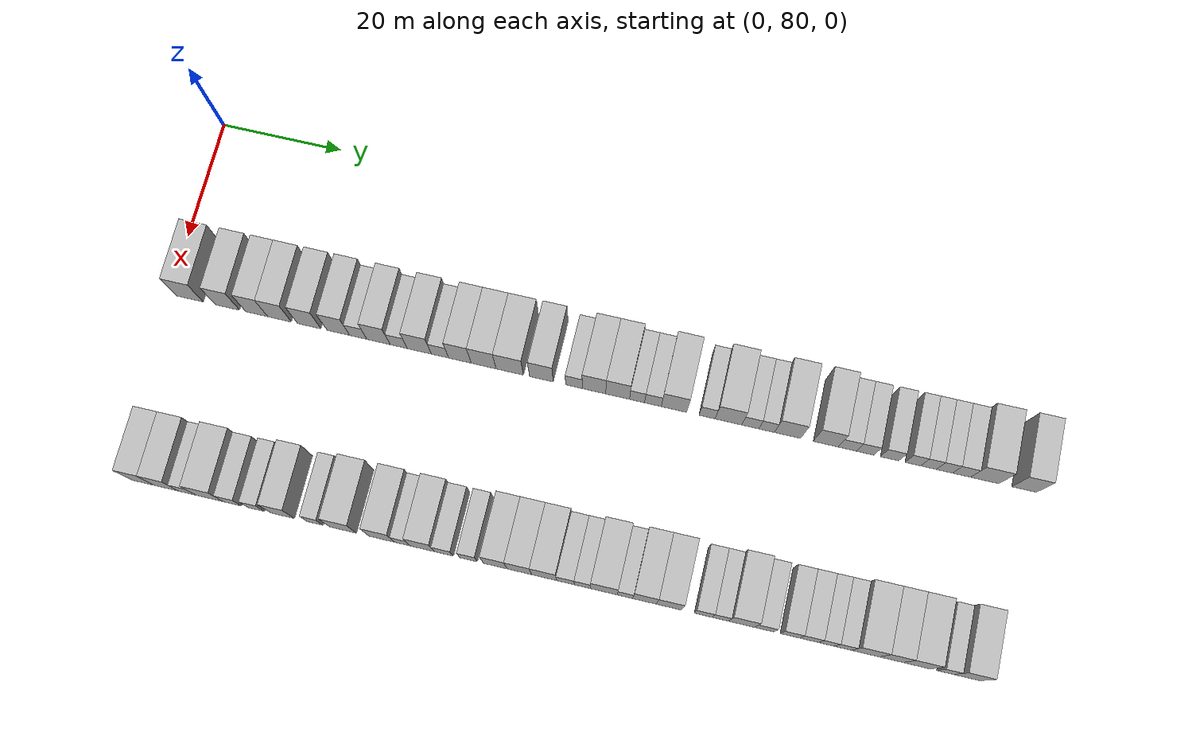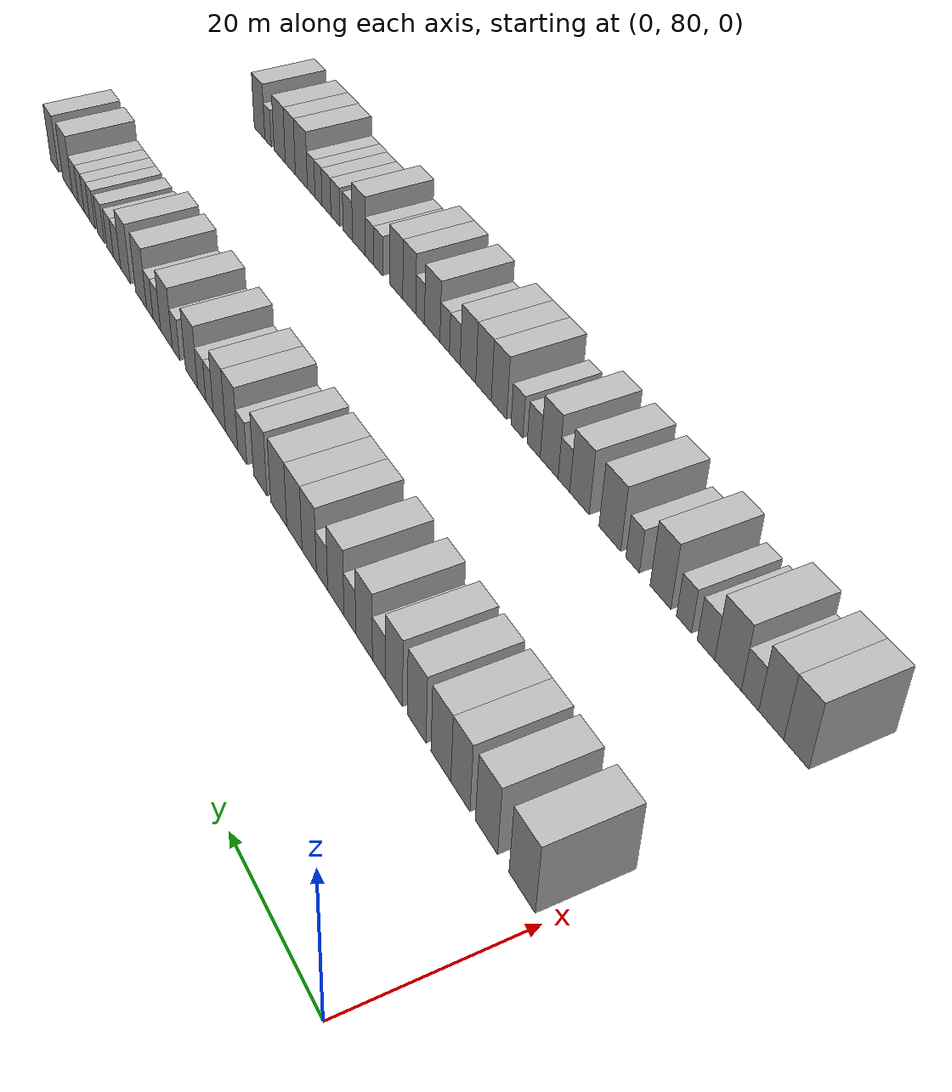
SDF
<sdf version="1.6">
 <world name="default">
  <model name="building_114">
   <static>1</static>
   <pose>25.0000 83.4187 0 0.000000 0.000000 0.000000</pose>
   <link name="link">
    <pose>0 0 4.50 0 0 0</pose>
    <collision name="collision"><geometry><box><size>10.0000 4.4901 9.0000</size></box></geometry></collision>
    <visual name="visual">
     <cast_shadows>0</cast_shadows>
     <geometry><box><size>10.0000 4.4901 9.0000</size></box></geometry>
     <material>
      <script>
       <uri>model://HANNAS_wall/materials/scripts</uri>
       <uri>model://HANNAS_wall/materials/textures</uri>
       <name>vrc/HANNAS_wall</name>
      </script>
     </material>
    </visual>
   </link>
  </model>
  <model name="building_115">
   <static>1</static>
   <pose>25.0000 89.6822 0 0.000000 0.000000 0.000000</pose>
   <link name="link">
    <pose>0 0 4.50 0 0 0</pose>
    <collision name="collision"><geometry><box><size>10.0000 4.0368 9.0000</size></box></geometry></collision>
    <visual name="visual">
     <cast_shadows>0</cast_shadows>
     <geometry><box><size>10.0000 4.0368 9.0000</size></box></geometry>
     <material>
      <script>
       <uri>model://HANNAS_wall/materials/scripts</uri>
       <uri>model://HANNAS_wall/materials/textures</uri>
       <name>vrc/HANNAS_wall</name>
      </script>
     </material>
    </visual>
   </link>
  </model>
  <model name="building_116">
   <static>1</static>
   <pose>25.0000 94.5310 0 0.000000 0.000000 0.000000</pose>
   <link name="link">
    <pose>0 0 4.50 0 0 0</pose>
    <collision name="collision"><geometry><box><size>10.0000 3.6609 9.0000</size></box></geometry></collision>
    <visual name="visual">
     <cast_shadows>0</cast_shadows>
     <geometry><box><size>10.0000 3.6609 9.0000</size></box></geometry>
     <material>
      <script>
       <uri>model://HANNAS_wall/materials/scripts</uri>
       <uri>model://HANNAS_wall/materials/textures</uri>
       <name>vrc/HANNAS_wall</name>
      </script>
     </material>
    </visual>
   </link>
  </model>
  <model name="building_117">
   <static>1</static>
   <pose>25.0000 98.3178 0 0.000000 0.000000 0.000000</pose>
   <link name="link">
    <pose>0 0 4.50 0 0 0</pose>
    <collision name="collision"><geometry><box><size>10.0000 3.9126 9.0000</size></box></geometry></collision>
    <visual name="visual">
     <cast_shadows>0</cast_shadows>
     <geometry><box><size>10.0000 3.9126 9.0000</size></box></geometry>
     <material>
      <script>
       <uri>model://HANNAS_wall/materials/scripts</uri>
       <uri>model://HANNAS_wall/materials/textures</uri>
       <name>vrc/HANNAS_wall</name>
      </script>
     </material>
    </visual>
   </link>
  </model>
  <model name="building_118">
   <static>1</static>
   <pose>25.0000 103.2134 0 0.000000 0.000000 0.000000</pose>
   <link name="link">
    <pose>0 0 4.50 0 0 0</pose>
    <collision name="collision"><geometry><box><size>10.0000 3.8786 9.0000</size></box></geometry></collision>
    <visual name="visual">
     <cast_shadows>0</cast_shadows>
     <geometry><box><size>10.0000 3.8786 9.0000</size></box></geometry>
     <material>
      <script>
       <uri>model://HANNAS_wall/materials/scripts</uri>
       <uri>model://HANNAS_wall/materials/textures</uri>
       <name>vrc/HANNAS_wall</name>
      </script>
     </material>
    </visual>
   </link>
  </model>
  <model name="building_119">
   <static>1</static>
   <pose>25.0000 108.0214 0 0.000000 0.000000 0.000000</pose>
   <link name="link">
    <pose>0 0 4.50 0 0 0</pose>
    <collision name="collision"><geometry><box><size>10.0000 3.7374 9.0000</size></box></geometry></collision>
    <visual name="visual">
     <cast_shadows>0</cast_shadows>
     <geometry><box><size>10.0000 3.7374 9.0000</size></box></geometry>
     <material>
      <script>
       <uri>model://HANNAS_wall/materials/scripts</uri>
       <uri>model://HANNAS_wall/materials/textures</uri>
       <name>vrc/HANNAS_wall</name>
      </script>
     </material>
    </visual>
   </link>
  </model>
  <model name="building_120">
   <static>1</static>
   <pose>25.0000 111.3132 0 0.000000 0.000000 0.000000</pose>
   <link name="link">
    <pose>0 0 3.00 0 0 0</pose>
    <collision name="collision"><geometry><box><size>10.0000 2.8462 6.0000</size></box></geometry></collision>
    <visual name="visual">
     <cast_shadows>0</cast_shadows>
     <geometry><box><size>10.0000 2.8462 6.0000</size></box></geometry>
     <material>
      <script>
       <uri>model://HANNAS_wall/materials/scripts</uri>
       <uri>model://HANNAS_wall/materials/textures</uri>
       <name>vrc/HANNAS_wall</name>
      </script>
     </material>
    </visual>
   </link>
  </model>
  <model name="building_121">
   <static>1</static>
   <pose>25.0000 114.6372 0 0.000000 0.000000 0.000000</pose>
   <link name="link">
    <pose>0 0 4.50 0 0 0</pose>
    <collision name="collision"><geometry><box><size>10.0000 3.8017 9.0000</size></box></geometry></collision>
    <visual name="visual">
     <cast_shadows>0</cast_shadows>
     <geometry><box><size>10.0000 3.8017 9.0000</size></box></geometry>
     <material>
      <script>
       <uri>model://HANNAS_wall/materials/scripts</uri>
       <uri>model://HANNAS_wall/materials/textures</uri>
       <name>vrc/HANNAS_wall</name>
      </script>
     </material>
    </visual>
   </link>
  </model>
  <model name="building_122">
   <static>1</static>
   <pose>25.0000 117.9324 0 0.000000 0.000000 0.000000</pose>
   <link name="link">
    <pose>0 0 3.00 0 0 0</pose>
    <collision name="collision"><geometry><box><size>10.0000 2.7888 6.0000</size></box></geometry></collision>
    <visual name="visual">
     <cast_shadows>0</cast_shadows>
     <geometry><box><size>10.0000 2.7888 6.0000</size></box></geometry>
     <material>
      <script>
       <uri>model://HANNAS_wall/materials/scripts</uri>
       <uri>model://HANNAS_wall/materials/textures</uri>
       <name>vrc/HANNAS_wall</name>
      </script>
     </material>
    </visual>
   </link>
  </model>
  <model name="building_123">
   <static>1</static>
   <pose>25.0000 121.3043 0 0.000000 0.000000 0.000000</pose>
   <link name="link">
    <pose>0 0 4.50 0 0 0</pose>
    <collision name="collision"><geometry><box><size>10.0000 3.9549 9.0000</size></box></geometry></collision>
    <visual name="visual">
     <cast_shadows>0</cast_shadows>
     <geometry><box><size>10.0000 3.9549 9.0000</size></box></geometry>
     <material>
      <script>
       <uri>model://HANNAS_wall/materials/scripts</uri>
       <uri>model://HANNAS_wall/materials/textures</uri>
       <name>vrc/HANNAS_wall</name>
      </script>
     </material>
    </visual>
   </link>
  </model>
  <model name="building_124">
   <static>1</static>
   <pose>25.0000 124.6850 0 0.000000 0.000000 0.000000</pose>
   <link name="link">
    <pose>0 0 3.00 0 0 0</pose>
    <collision name="collision"><geometry><box><size>10.0000 2.8064 6.0000</size></box></geometry></collision>
    <visual name="visual">
     <cast_shadows>0</cast_shadows>
     <geometry><box><size>10.0000 2.8064 6.0000</size></box></geometry>
     <material>
      <script>
       <uri>model://HANNAS_wall/materials/scripts</uri>
       <uri>model://HANNAS_wall/materials/textures</uri>
       <name>vrc/HANNAS_wall</name>
      </script>
     </material>
    </visual>
   </link>
  </model>
  <model name="building_125">
   <static>1</static>
   <pose>25.0000 127.9263 0 0.000000 0.000000 0.000000</pose>
   <link name="link">
    <pose>0 0 4.50 0 0 0</pose>
    <collision name="collision"><geometry><box><size>10.0000 3.6763 9.0000</size></box></geometry></collision>
    <visual name="visual">
     <cast_shadows>0</cast_shadows>
     <geometry><box><size>10.0000 3.6763 9.0000</size></box></geometry>
     <material>
      <script>
       <uri>model://HANNAS_wall/materials/scripts</uri>
       <uri>model://HANNAS_wall/materials/textures</uri>
       <name>vrc/HANNAS_wall</name>
      </script>
     </material>
    </visual>
   </link>
  </model>
  <model name="building_126">
   <static>1</static>
   <pose>25.0000 131.7962 0 0.000000 0.000000 0.000000</pose>
   <link name="link">
    <pose>0 0 4.50 0 0 0</pose>
    <collision name="collision"><geometry><box><size>10.0000 4.0636 9.0000</size></box></geometry></collision>
    <visual name="visual">
     <cast_shadows>0</cast_shadows>
     <geometry><box><size>10.0000 4.0636 9.0000</size></box></geometry>
     <material>
      <script>
       <uri>model://HANNAS_wall/materials/scripts</uri>
       <uri>model://HANNAS_wall/materials/textures</uri>
       <name>vrc/HANNAS_wall</name>
      </script>
     </material>
    </visual>
   </link>
  </model>
  <model name="building_127">
   <static>1</static>
   <pose>25.0000 136.0463 0 0.000000 0.000000 0.000000</pose>
   <link name="link">
    <pose>0 0 4.50 0 0 0</pose>
    <collision name="collision"><geometry><box><size>10.0000 4.4367 9.0000</size></box></geometry></collision>
    <visual name="visual">
     <cast_shadows>0</cast_shadows>
     <geometry><box><size>10.0000 4.4367 9.0000</size></box></geometry>
     <material>
      <script>
       <uri>model://HANNAS_wall/materials/scripts</uri>
       <uri>model://HANNAS_wall/materials/textures</uri>
       <name>vrc/HANNAS_wall</name>
      </script>
     </material>
    </visual>
   </link>
  </model>
  <model name="building_128">
   <static>1</static>
   <pose>25.0000 141.1790 0 0.000000 0.000000 0.000000</pose>
   <link name="link">
    <pose>0 0 4.50 0 0 0</pose>
    <collision name="collision"><geometry><box><size>10.0000 3.8285 9.0000</size></box></geometry></collision>
    <visual name="visual">
     <cast_shadows>0</cast_shadows>
     <geometry><box><size>10.0000 3.8285 9.0000</size></box></geometry>
     <material>
      <script>
       <uri>model://HANNAS_wall/materials/scripts</uri>
       <uri>model://HANNAS_wall/materials/textures</uri>
       <name>vrc/HANNAS_wall</name>
      </script>
     </material>
    </visual>
   </link>
  </model>
  <model name="building_129">
   <static>1</static>
   <pose>25.0000 146.4346 0 0.000000 0.000000 0.000000</pose>
   <link name="link">
    <pose>0 0 3.00 0 0 0</pose>
    <collision name="collision"><geometry><box><size>10.0000 2.6828 6.0000</size></box></geometry></collision>
    <visual name="visual">
     <cast_shadows>0</cast_shadows>
     <geometry><box><size>10.0000 2.6828 6.0000</size></box></geometry>
     <material>
      <script>
       <uri>model://HANNAS_wall/materials/scripts</uri>
       <uri>model://HANNAS_wall/materials/textures</uri>
       <name>vrc/HANNAS_wall</name>
      </script>
     </material>
    </visual>
   </link>
  </model>
  <model name="building_130">
   <static>1</static>
   <pose>25.0000 149.6611 0 0.000000 0.000000 0.000000</pose>
   <link name="link">
    <pose>0 0 4.50 0 0 0</pose>
    <collision name="collision"><geometry><box><size>10.0000 3.7701 9.0000</size></box></geometry></collision>
    <visual name="visual">
     <cast_shadows>0</cast_shadows>
     <geometry><box><size>10.0000 3.7701 9.0000</size></box></geometry>
     <material>
      <script>
       <uri>model://HANNAS_wall/materials/scripts</uri>
       <uri>model://HANNAS_wall/materials/textures</uri>
       <name>vrc/HANNAS_wall</name>
      </script>
     </material>
    </visual>
   </link>
  </model>
  <model name="building_131">
   <static>1</static>
   <pose>25.0000 153.4596 0 0.000000 0.000000 0.000000</pose>
   <link name="link">
    <pose>0 0 4.50 0 0 0</pose>
    <collision name="collision"><geometry><box><size>10.0000 3.8269 9.0000</size></box></geometry></collision>
    <visual name="visual">
     <cast_shadows>0</cast_shadows>
     <geometry><box><size>10.0000 3.8269 9.0000</size></box></geometry>
     <material>
      <script>
       <uri>model://HANNAS_wall/materials/scripts</uri>
       <uri>model://HANNAS_wall/materials/textures</uri>
       <name>vrc/HANNAS_wall</name>
      </script>
     </material>
    </visual>
   </link>
  </model>
  <model name="building_132">
   <static>1</static>
   <pose>25.0000 156.5823 0 0.000000 0.000000 0.000000</pose>
   <link name="link">
    <pose>0 0 3.00 0 0 0</pose>
    <collision name="collision"><geometry><box><size>10.0000 2.4185 6.0000</size></box></geometry></collision>
    <visual name="visual">
     <cast_shadows>0</cast_shadows>
     <geometry><box><size>10.0000 2.4185 6.0000</size></box></geometry>
     <material>
      <script>
       <uri>model://HANNAS_wall/materials/scripts</uri>
       <uri>model://HANNAS_wall/materials/textures</uri>
       <name>vrc/HANNAS_wall</name>
      </script>
     </material>
    </visual>
   </link>
  </model>
  <model name="building_133">
   <static>1</static>
   <pose>25.0000 159.1326 0 0.000000 0.000000 0.000000</pose>
   <link name="link">
    <pose>0 0 3.00 0 0 0</pose>
    <collision name="collision"><geometry><box><size>10.0000 2.6821 6.0000</size></box></geometry></collision>
    <visual name="visual">
     <cast_shadows>0</cast_shadows>
     <geometry><box><size>10.0000 2.6821 6.0000</size></box></geometry>
     <material>
      <script>
       <uri>model://HANNAS_wall/materials/scripts</uri>
       <uri>model://HANNAS_wall/materials/textures</uri>
       <name>vrc/HANNAS_wall</name>
      </script>
     </material>
    </visual>
   </link>
  </model>
  <model name="building_134">
   <static>1</static>
   <pose>25.0000 162.5015 0 0.000000 0.000000 0.000000</pose>
   <link name="link">
    <pose>0 0 4.50 0 0 0</pose>
    <collision name="collision"><geometry><box><size>10.0000 4.0558 9.0000</size></box></geometry></collision>
    <visual name="visual">
     <cast_shadows>0</cast_shadows>
     <geometry><box><size>10.0000 4.0558 9.0000</size></box></geometry>
     <material>
      <script>
       <uri>model://HANNAS_wall/materials/scripts</uri>
       <uri>model://HANNAS_wall/materials/textures</uri>
       <name>vrc/HANNAS_wall</name>
      </script>
     </material>
    </visual>
   </link>
  </model>
  <model name="building_135">
   <static>1</static>
   <pose>25.0000 167.8032 0 0.000000 0.000000 0.000000</pose>
   <link name="link">
    <pose>0 0 3.00 0 0 0</pose>
    <collision name="collision"><geometry><box><size>10.0000 2.5476 6.0000</size></box></geometry></collision>
    <visual name="visual">
     <cast_shadows>0</cast_shadows>
     <geometry><box><size>10.0000 2.5476 6.0000</size></box></geometry>
     <material>
      <script>
       <uri>model://HANNAS_wall/materials/scripts</uri>
       <uri>model://HANNAS_wall/materials/textures</uri>
       <name>vrc/HANNAS_wall</name>
      </script>
     </material>
    </visual>
   </link>
  </model>
  <model name="building_136">
   <static>1</static>
   <pose>25.0000 171.2039 0 0.000000 0.000000 0.000000</pose>
   <link name="link">
    <pose>0 0 4.50 0 0 0</pose>
    <collision name="collision"><geometry><box><size>10.0000 4.2538 9.0000</size></box></geometry></collision>
    <visual name="visual">
     <cast_shadows>0</cast_shadows>
     <geometry><box><size>10.0000 4.2538 9.0000</size></box></geometry>
     <material>
      <script>
       <uri>model://HANNAS_wall/materials/scripts</uri>
       <uri>model://HANNAS_wall/materials/textures</uri>
       <name>vrc/HANNAS_wall</name>
      </script>
     </material>
    </visual>
   </link>
  </model>
  <model name="building_137">
   <static>1</static>
   <pose>25.0000 174.6920 0 0.000000 0.000000 0.000000</pose>
   <link name="link">
    <pose>0 0 3.00 0 0 0</pose>
    <collision name="collision"><geometry><box><size>10.0000 2.7223 6.0000</size></box></geometry></collision>
    <visual name="visual">
     <cast_shadows>0</cast_shadows>
     <geometry><box><size>10.0000 2.7223 6.0000</size></box></geometry>
     <material>
      <script>
       <uri>model://HANNAS_wall/materials/scripts</uri>
       <uri>model://HANNAS_wall/materials/textures</uri>
       <name>vrc/HANNAS_wall</name>
      </script>
     </material>
    </visual>
   </link>
  </model>
  <model name="building_138">
   <static>1</static>
   <pose>25.0000 177.2878 0 0.000000 0.000000 0.000000</pose>
   <link name="link">
    <pose>0 0 3.00 0 0 0</pose>
    <collision name="collision"><geometry><box><size>10.0000 2.4693 6.0000</size></box></geometry></collision>
    <visual name="visual">
     <cast_shadows>0</cast_shadows>
     <geometry><box><size>10.0000 2.4693 6.0000</size></box></geometry>
     <material>
      <script>
       <uri>model://HANNAS_wall/materials/scripts</uri>
       <uri>model://HANNAS_wall/materials/textures</uri>
       <name>vrc/HANNAS_wall</name>
      </script>
     </material>
    </visual>
   </link>
  </model>
  <model name="building_139">
   <static>1</static>
   <pose>25.0000 180.6132 0 0.000000 0.000000 0.000000</pose>
   <link name="link">
    <pose>0 0 4.50 0 0 0</pose>
    <collision name="collision"><geometry><box><size>10.0000 4.1814 9.0000</size></box></geometry></collision>
    <visual name="visual">
     <cast_shadows>0</cast_shadows>
     <geometry><box><size>10.0000 4.1814 9.0000</size></box></geometry>
     <material>
      <script>
       <uri>model://HANNAS_wall/materials/scripts</uri>
       <uri>model://HANNAS_wall/materials/textures</uri>
       <name>vrc/HANNAS_wall</name>
      </script>
     </material>
    </visual>
   </link>
  </model>
  <model name="building_140">
   <static>1</static>
   <pose>25.0000 186.6657 0 0.000000 0.000000 0.000000</pose>
   <link name="link">
    <pose>0 0 4.50 0 0 0</pose>
    <collision name="collision"><geometry><box><size>10.0000 3.9235 9.0000</size></box></geometry></collision>
    <visual name="visual">
     <cast_shadows>0</cast_shadows>
     <geometry><box><size>10.0000 3.9235 9.0000</size></box></geometry>
     <material>
      <script>
       <uri>model://HANNAS_wall/materials/scripts</uri>
       <uri>model://HANNAS_wall/materials/textures</uri>
       <name>vrc/HANNAS_wall</name>
      </script>
     </material>
    </visual>
   </link>
  </model>
  <model name="building_141">
   <static>1</static>
   <pose>25.0000 190.0866 0 0.000000 0.000000 0.000000</pose>
   <link name="link">
    <pose>0 0 3.00 0 0 0</pose>
    <collision name="collision"><geometry><box><size>10.0000 2.9184 6.0000</size></box></geometry></collision>
    <visual name="visual">
     <cast_shadows>0</cast_shadows>
     <geometry><box><size>10.0000 2.9184 6.0000</size></box></geometry>
     <material>
      <script>
       <uri>model://HANNAS_wall/materials/scripts</uri>
       <uri>model://HANNAS_wall/materials/textures</uri>
       <name>vrc/HANNAS_wall</name>
      </script>
     </material>
    </visual>
   </link>
  </model>
  <model name="building_142">
   <static>1</static>
   <pose>25.0000 192.9263 0 0.000000 0.000000 0.000000</pose>
   <link name="link">
    <pose>0 0 3.00 0 0 0</pose>
    <collision name="collision"><geometry><box><size>10.0000 2.7609 6.0000</size></box></geometry></collision>
    <visual name="visual">
     <cast_shadows>0</cast_shadows>
     <geometry><box><size>10.0000 2.7609 6.0000</size></box></geometry>
     <material>
      <script>
       <uri>model://HANNAS_wall/materials/scripts</uri>
       <uri>model://HANNAS_wall/materials/textures</uri>
       <name>vrc/HANNAS_wall</name>
      </script>
     </material>
    </visual>
   </link>
  </model>
  <model name="building_143">
   <static>1</static>
   <pose>25.0000 196.7523 0 0.000000 0.000000 0.000000</pose>
   <link name="link">
    <pose>0 0 3.00 0 0 0</pose>
    <collision name="collision"><geometry><box><size>10.0000 2.8910 6.0000</size></box></geometry></collision>
    <visual name="visual">
     <cast_shadows>0</cast_shadows>
     <geometry><box><size>10.0000 2.8910 6.0000</size></box></geometry>
     <material>
      <script>
       <uri>model://HANNAS_wall/materials/scripts</uri>
       <uri>model://HANNAS_wall/materials/textures</uri>
       <name>vrc/HANNAS_wall</name>
      </script>
     </material>
    </visual>
   </link>
  </model>
  <model name="building_144">
   <static>1</static>
   <pose>25.0000 200.4100 0 0.000000 0.000000 0.000000</pose>
   <link name="link">
    <pose>0 0 3.00 0 0 0</pose>
    <collision name="collision"><geometry><box><size>10.0000 2.4245 6.0000</size></box></geometry></collision>
    <visual name="visual">
     <cast_shadows>0</cast_shadows>
     <geometry><box><size>10.0000 2.4245 6.0000</size></box></geometry>
     <material>
      <script>
       <uri>model://HANNAS_wall/materials/scripts</uri>
       <uri>model://HANNAS_wall/materials/textures</uri>
       <name>vrc/HANNAS_wall</name>
      </script>
     </material>
    </visual>
   </link>
  </model>
  <model name="building_145">
   <static>1</static>
   <pose>25.0000 202.8543 0 0.000000 0.000000 0.000000</pose>
   <link name="link">
    <pose>0 0 3.00 0 0 0</pose>
    <collision name="collision"><geometry><box><size>10.0000 2.4640 6.0000</size></box></geometry></collision>
    <visual name="visual">
     <cast_shadows>0</cast_shadows>
     <geometry><box><size>10.0000 2.4640 6.0000</size></box></geometry>
     <material>
      <script>
       <uri>model://HANNAS_wall/materials/scripts</uri>
       <uri>model://HANNAS_wall/materials/textures</uri>
       <name>vrc/HANNAS_wall</name>
      </script>
     </material>
    </visual>
   </link>
  </model>
  <model name="building_146">
   <static>1</static>
   <pose>25.0000 205.3553 0 0.000000 0.000000 0.000000</pose>
   <link name="link">
    <pose>0 0 3.00 0 0 0</pose>
    <collision name="collision"><geometry><box><size>10.0000 2.5381 6.0000</size></box></geometry></collision>
    <visual name="visual">
     <cast_shadows>0</cast_shadows>
     <geometry><box><size>10.0000 2.5381 6.0000</size></box></geometry>
     <material>
      <script>
       <uri>model://HANNAS_wall/materials/scripts</uri>
       <uri>model://HANNAS_wall/materials/textures</uri>
       <name>vrc/HANNAS_wall</name>
      </script>
     </material>
    </visual>
   </link>
  </model>
  <model name="building_147">
   <static>1</static>
   <pose>25.0000 208.0444 0 0.000000 0.000000 0.000000</pose>
   <link name="link">
    <pose>0 0 3.00 0 0 0</pose>
    <collision name="collision"><geometry><box><size>10.0000 2.8399 6.0000</size></box></geometry></collision>
    <visual name="visual">
     <cast_shadows>0</cast_shadows>
     <geometry><box><size>10.0000 2.8399 6.0000</size></box></geometry>
     <material>
      <script>
       <uri>model://HANNAS_wall/materials/scripts</uri>
       <uri>model://HANNAS_wall/materials/textures</uri>
       <name>vrc/HANNAS_wall</name>
      </script>
     </material>
    </visual>
   </link>
  </model>
  <model name="building_148">
   <static>1</static>
   <pose>25.0000 211.6745 0 0.000000 0.000000 0.000000</pose>
   <link name="link">
    <pose>0 0 4.50 0 0 0</pose>
    <collision name="collision"><geometry><box><size>10.0000 4.4203 9.0000</size></box></geometry></collision>
    <visual name="visual">
     <cast_shadows>0</cast_shadows>
     <geometry><box><size>10.0000 4.4203 9.0000</size></box></geometry>
     <material>
      <script>
       <uri>model://HANNAS_wall/materials/scripts</uri>
       <uri>model://HANNAS_wall/materials/textures</uri>
       <name>vrc/HANNAS_wall</name>
      </script>
     </material>
    </visual>
   </link>
  </model>
  <model name="building_149">
   <static>1</static>
   <pose>25.0000 217.8087 0 0.000000 0.000000 0.000000</pose>
   <link name="link">
    <pose>0 0 4.50 0 0 0</pose>
    <collision name="collision"><geometry><box><size>10.0000 3.8480 9.0000</size></box></geometry></collision>
    <visual name="visual">
     <cast_shadows>0</cast_shadows>
     <geometry><box><size>10.0000 3.8480 9.0000</size></box></geometry>
     <material>
      <script>
       <uri>model://HANNAS_wall/materials/scripts</uri>
       <uri>model://HANNAS_wall/materials/textures</uri>
       <name>vrc/HANNAS_wall</name>
      </script>
     </material>
    </visual>
   </link>
  </model>
  <model name="building_343">
   <static>1</static>
   <pose>55.0000 85.2197 0 0.000000 0.000000 0.000000</pose>
   <link name="link">
    <pose>0 0 4.50 0 0 0</pose>
    <collision name="collision"><geometry><box><size>10.0000 3.7514 9.0000</size></box></geometry></collision>
    <visual name="visual">
     <cast_shadows>0</cast_shadows>
     <geometry><box><size>10.0000 3.7514 9.0000</size></box></geometry>
     <material>
      <script>
       <uri>model://HANNAS_wall/materials/scripts</uri>
       <uri>model://HANNAS_wall/materials/textures</uri>
       <name>vrc/HANNAS_wall</name>
      </script>
     </material>
    </visual>
   </link>
  </model>
  <model name="building_344">
   <static>1</static>
   <pose>55.0000 89.0306 0 0.000000 0.000000 0.000000</pose>
   <link name="link">
    <pose>0 0 4.50 0 0 0</pose>
    <collision name="collision"><geometry><box><size>10.0000 3.8705 9.0000</size></box></geometry></collision>
    <visual name="visual">
     <cast_shadows>0</cast_shadows>
     <geometry><box><size>10.0000 3.8705 9.0000</size></box></geometry>
     <material>
      <script>
       <uri>model://HANNAS_wall/materials/scripts</uri>
       <uri>model://HANNAS_wall/materials/textures</uri>
       <name>vrc/HANNAS_wall</name>
      </script>
     </material>
    </visual>
   </link>
  </model>
  <model name="building_345">
   <static>1</static>
   <pose>55.0000 92.3552 0 0.000000 0.000000 0.000000</pose>
   <link name="link">
    <pose>0 0 3.00 0 0 0</pose>
    <collision name="collision"><geometry><box><size>10.0000 2.7786 6.0000</size></box></geometry></collision>
    <visual name="visual">
     <cast_shadows>0</cast_shadows>
     <geometry><box><size>10.0000 2.7786 6.0000</size></box></geometry>
     <material>
      <script>
       <uri>model://HANNAS_wall/materials/scripts</uri>
       <uri>model://HANNAS_wall/materials/textures</uri>
       <name>vrc/HANNAS_wall</name>
      </script>
     </material>
    </visual>
   </link>
  </model>
  <model name="building_346">
   <static>1</static>
   <pose>55.0000 95.9352 0 0.000000 0.000000 0.000000</pose>
   <link name="link">
    <pose>0 0 4.50 0 0 0</pose>
    <collision name="collision"><geometry><box><size>10.0000 4.3813 9.0000</size></box></geometry></collision>
    <visual name="visual">
     <cast_shadows>0</cast_shadows>
     <geometry><box><size>10.0000 4.3813 9.0000</size></box></geometry>
     <material>
      <script>
       <uri>model://HANNAS_wall/materials/scripts</uri>
       <uri>model://HANNAS_wall/materials/textures</uri>
       <name>vrc/HANNAS_wall</name>
      </script>
     </material>
    </visual>
   </link>
  </model>
  <model name="building_347">
   <static>1</static>
   <pose>55.0000 99.6043 0 0.000000 0.000000 0.000000</pose>
   <link name="link">
    <pose>0 0 3.00 0 0 0</pose>
    <collision name="collision"><geometry><box><size>10.0000 2.9569 6.0000</size></box></geometry></collision>
    <visual name="visual">
     <cast_shadows>0</cast_shadows>
     <geometry><box><size>10.0000 2.9569 6.0000</size></box></geometry>
     <material>
      <script>
       <uri>model://HANNAS_wall/materials/scripts</uri>
       <uri>model://HANNAS_wall/materials/textures</uri>
       <name>vrc/HANNAS_wall</name>
      </script>
     </material>
    </visual>
   </link>
  </model>
  <model name="building_348">
   <static>1</static>
   <pose>55.0000 103.3990 0 0.000000 0.000000 0.000000</pose>
   <link name="link">
    <pose>0 0 3.00 0 0 0</pose>
    <collision name="collision"><geometry><box><size>10.0000 2.6324 6.0000</size></box></geometry></collision>
    <visual name="visual">
     <cast_shadows>0</cast_shadows>
     <geometry><box><size>10.0000 2.6324 6.0000</size></box></geometry>
     <material>
      <script>
       <uri>model://HANNAS_wall/materials/scripts</uri>
       <uri>model://HANNAS_wall/materials/textures</uri>
       <name>vrc/HANNAS_wall</name>
      </script>
     </material>
    </visual>
   </link>
  </model>
  <model name="building_349">
   <static>1</static>
   <pose>55.0000 107.6074 0 0.000000 0.000000 0.000000</pose>
   <link name="link">
    <pose>0 0 4.50 0 0 0</pose>
    <collision name="collision"><geometry><box><size>10.0000 3.7843 9.0000</size></box></geometry></collision>
    <visual name="visual">
     <cast_shadows>0</cast_shadows>
     <geometry><box><size>10.0000 3.7843 9.0000</size></box></geometry>
     <material>
      <script>
       <uri>model://HANNAS_wall/materials/scripts</uri>
       <uri>model://HANNAS_wall/materials/textures</uri>
       <name>vrc/HANNAS_wall</name>
      </script>
     </material>
    </visual>
   </link>
  </model>
  <model name="building_350">
   <static>1</static>
   <pose>55.0000 112.7838 0 0.000000 0.000000 0.000000</pose>
   <link name="link">
    <pose>0 0 3.00 0 0 0</pose>
    <collision name="collision"><geometry><box><size>10.0000 2.5685 6.0000</size></box></geometry></collision>
    <visual name="visual">
     <cast_shadows>0</cast_shadows>
     <geometry><box><size>10.0000 2.5685 6.0000</size></box></geometry>
     <material>
      <script>
       <uri>model://HANNAS_wall/materials/scripts</uri>
       <uri>model://HANNAS_wall/materials/textures</uri>
       <name>vrc/HANNAS_wall</name>
      </script>
     </material>
    </visual>
   </link>
  </model>
  <model name="building_351">
   <static>1</static>
   <pose>55.0000 117.2135 0 0.000000 0.000000 0.000000</pose>
   <link name="link">
    <pose>0 0 4.50 0 0 0</pose>
    <collision name="collision"><geometry><box><size>10.0000 4.2909 9.0000</size></box></geometry></collision>
    <visual name="visual">
     <cast_shadows>0</cast_shadows>
     <geometry><box><size>10.0000 4.2909 9.0000</size></box></geometry>
     <material>
      <script>
       <uri>model://HANNAS_wall/materials/scripts</uri>
       <uri>model://HANNAS_wall/materials/textures</uri>
       <name>vrc/HANNAS_wall</name>
      </script>
     </material>
    </visual>
   </link>
  </model>
  <model name="building_352">
   <static>1</static>
   <pose>55.0000 123.3904 0 0.000000 0.000000 0.000000</pose>
   <link name="link">
    <pose>0 0 4.50 0 0 0</pose>
    <collision name="collision"><geometry><box><size>10.0000 4.0629 9.0000</size></box></geometry></collision>
    <visual name="visual">
     <cast_shadows>0</cast_shadows>
     <geometry><box><size>10.0000 4.0629 9.0000</size></box></geometry>
     <material>
      <script>
       <uri>model://HANNAS_wall/materials/scripts</uri>
       <uri>model://HANNAS_wall/materials/textures</uri>
       <name>vrc/HANNAS_wall</name>
      </script>
     </material>
    </visual>
   </link>
  </model>
  <model name="building_353">
   <static>1</static>
   <pose>55.0000 126.6519 0 0.000000 0.000000 0.000000</pose>
   <link name="link">
    <pose>0 0 3.00 0 0 0</pose>
    <collision name="collision"><geometry><box><size>10.0000 2.4602 6.0000</size></box></geometry></collision>
    <visual name="visual">
     <cast_shadows>0</cast_shadows>
     <geometry><box><size>10.0000 2.4602 6.0000</size></box></geometry>
     <material>
      <script>
       <uri>model://HANNAS_wall/materials/scripts</uri>
       <uri>model://HANNAS_wall/materials/textures</uri>
       <name>vrc/HANNAS_wall</name>
      </script>
     </material>
    </visual>
   </link>
  </model>
  <model name="building_354">
   <static>1</static>
   <pose>55.0000 129.8359 0 0.000000 0.000000 0.000000</pose>
   <link name="link">
    <pose>0 0 4.50 0 0 0</pose>
    <collision name="collision"><geometry><box><size>10.0000 3.9076 9.0000</size></box></geometry></collision>
    <visual name="visual">
     <cast_shadows>0</cast_shadows>
     <geometry><box><size>10.0000 3.9076 9.0000</size></box></geometry>
     <material>
      <script>
       <uri>model://HANNAS_wall/materials/scripts</uri>
       <uri>model://HANNAS_wall/materials/textures</uri>
       <name>vrc/HANNAS_wall</name>
      </script>
     </material>
    </visual>
   </link>
  </model>
  <model name="building_355">
   <static>1</static>
   <pose>55.0000 133.2449 0 0.000000 0.000000 0.000000</pose>
   <link name="link">
    <pose>0 0 3.00 0 0 0</pose>
    <collision name="collision"><geometry><box><size>10.0000 2.9103 6.0000</size></box></geometry></collision>
    <visual name="visual">
     <cast_shadows>0</cast_shadows>
     <geometry><box><size>10.0000 2.9103 6.0000</size></box></geometry>
     <material>
      <script>
       <uri>model://HANNAS_wall/materials/scripts</uri>
       <uri>model://HANNAS_wall/materials/textures</uri>
       <name>vrc/HANNAS_wall</name>
      </script>
     </material>
    </visual>
   </link>
  </model>
  <model name="building_356">
   <static>1</static>
   <pose>55.0000 137.0693 0 0.000000 0.000000 0.000000</pose>
   <link name="link">
    <pose>0 0 3.00 0 0 0</pose>
    <collision name="collision"><geometry><box><size>10.0000 2.7386 6.0000</size></box></geometry></collision>
    <visual name="visual">
     <cast_shadows>0</cast_shadows>
     <geometry><box><size>10.0000 2.7386 6.0000</size></box></geometry>
     <material>
      <script>
       <uri>model://HANNAS_wall/materials/scripts</uri>
       <uri>model://HANNAS_wall/materials/textures</uri>
       <name>vrc/HANNAS_wall</name>
      </script>
     </material>
    </visual>
   </link>
  </model>
  <model name="building_357">
   <static>1</static>
   <pose>55.0000 141.2831 0 0.000000 0.000000 0.000000</pose>
   <link name="link">
    <pose>0 0 4.50 0 0 0</pose>
    <collision name="collision"><geometry><box><size>10.0000 3.6889 9.0000</size></box></geometry></collision>
    <visual name="visual">
     <cast_shadows>0</cast_shadows>
     <geometry><box><size>10.0000 3.6889 9.0000</size></box></geometry>
     <material>
      <script>
       <uri>model://HANNAS_wall/materials/scripts</uri>
       <uri>model://HANNAS_wall/materials/textures</uri>
       <name>vrc/HANNAS_wall</name>
      </script>
     </material>
    </visual>
   </link>
  </model>
  <model name="building_358">
   <static>1</static>
   <pose>55.0000 145.0310 0 0.000000 0.000000 0.000000</pose>
   <link name="link">
    <pose>0 0 4.50 0 0 0</pose>
    <collision name="collision"><geometry><box><size>10.0000 3.8070 9.0000</size></box></geometry></collision>
    <visual name="visual">
     <cast_shadows>0</cast_shadows>
     <geometry><box><size>10.0000 3.8070 9.0000</size></box></geometry>
     <material>
      <script>
       <uri>model://HANNAS_wall/materials/scripts</uri>
       <uri>model://HANNAS_wall/materials/textures</uri>
       <name>vrc/HANNAS_wall</name>
      </script>
     </material>
    </visual>
   </link>
  </model>
  <model name="building_359">
   <static>1</static>
   <pose>55.0000 148.9000 0 0.000000 0.000000 0.000000</pose>
   <link name="link">
    <pose>0 0 4.50 0 0 0</pose>
    <collision name="collision"><geometry><box><size>10.0000 3.9310 9.0000</size></box></geometry></collision>
    <visual name="visual">
     <cast_shadows>0</cast_shadows>
     <geometry><box><size>10.0000 3.9310 9.0000</size></box></geometry>
     <material>
      <script>
       <uri>model://HANNAS_wall/materials/scripts</uri>
       <uri>model://HANNAS_wall/materials/textures</uri>
       <name>vrc/HANNAS_wall</name>
      </script>
     </material>
    </visual>
   </link>
  </model>
  <model name="building_360">
   <static>1</static>
   <pose>55.0000 152.2350 0 0.000000 0.000000 0.000000</pose>
   <link name="link">
    <pose>0 0 3.00 0 0 0</pose>
    <collision name="collision"><geometry><box><size>10.0000 2.7392 6.0000</size></box></geometry></collision>
    <visual name="visual">
     <cast_shadows>0</cast_shadows>
     <geometry><box><size>10.0000 2.7392 6.0000</size></box></geometry>
     <material>
      <script>
       <uri>model://HANNAS_wall/materials/scripts</uri>
       <uri>model://HANNAS_wall/materials/textures</uri>
       <name>vrc/HANNAS_wall</name>
      </script>
     </material>
    </visual>
   </link>
  </model>
  <model name="building_361">
   <static>1</static>
   <pose>55.0000 154.8631 0 0.000000 0.000000 0.000000</pose>
   <link name="link">
    <pose>0 0 3.00 0 0 0</pose>
    <collision name="collision"><geometry><box><size>10.0000 2.5170 6.0000</size></box></geometry></collision>
    <visual name="visual">
     <cast_shadows>0</cast_shadows>
     <geometry><box><size>10.0000 2.5170 6.0000</size></box></geometry>
     <material>
      <script>
       <uri>model://HANNAS_wall/materials/scripts</uri>
       <uri>model://HANNAS_wall/materials/textures</uri>
       <name>vrc/HANNAS_wall</name>
      </script>
     </material>
    </visual>
   </link>
  </model>
  <model name="building_362">
   <static>1</static>
   <pose>55.0000 158.2064 0 0.000000 0.000000 0.000000</pose>
   <link name="link">
    <pose>0 0 4.50 0 0 0</pose>
    <collision name="collision"><geometry><box><size>10.0000 4.1695 9.0000</size></box></geometry></collision>
    <visual name="visual">
     <cast_shadows>0</cast_shadows>
     <geometry><box><size>10.0000 4.1695 9.0000</size></box></geometry>
     <material>
      <script>
       <uri>model://HANNAS_wall/materials/scripts</uri>
       <uri>model://HANNAS_wall/materials/textures</uri>
       <name>vrc/HANNAS_wall</name>
      </script>
     </material>
    </visual>
   </link>
  </model>
  <model name="building_363">
   <static>1</static>
   <pose>55.0000 161.5004 0 0.000000 0.000000 0.000000</pose>
   <link name="link">
    <pose>0 0 3.00 0 0 0</pose>
    <collision name="collision"><geometry><box><size>10.0000 2.4185 6.0000</size></box></geometry></collision>
    <visual name="visual">
     <cast_shadows>0</cast_shadows>
     <geometry><box><size>10.0000 2.4185 6.0000</size></box></geometry>
     <material>
      <script>
       <uri>model://HANNAS_wall/materials/scripts</uri>
       <uri>model://HANNAS_wall/materials/textures</uri>
       <name>vrc/HANNAS_wall</name>
      </script>
     </material>
    </visual>
   </link>
  </model>
  <model name="building_364">
   <static>1</static>
   <pose>55.0000 164.5312 0 0.000000 0.000000 0.000000</pose>
   <link name="link">
    <pose>0 0 4.50 0 0 0</pose>
    <collision name="collision"><geometry><box><size>10.0000 3.6432 9.0000</size></box></geometry></collision>
    <visual name="visual">
     <cast_shadows>0</cast_shadows>
     <geometry><box><size>10.0000 3.6432 9.0000</size></box></geometry>
     <material>
      <script>
       <uri>model://HANNAS_wall/materials/scripts</uri>
       <uri>model://HANNAS_wall/materials/textures</uri>
       <name>vrc/HANNAS_wall</name>
      </script>
     </material>
    </visual>
   </link>
  </model>
  <model name="building_365">
   <static>1</static>
   <pose>55.0000 168.2884 0 0.000000 0.000000 0.000000</pose>
   <link name="link">
    <pose>0 0 4.50 0 0 0</pose>
    <collision name="collision"><geometry><box><size>10.0000 3.8711 9.0000</size></box></geometry></collision>
    <visual name="visual">
     <cast_shadows>0</cast_shadows>
     <geometry><box><size>10.0000 3.8711 9.0000</size></box></geometry>
     <material>
      <script>
       <uri>model://HANNAS_wall/materials/scripts</uri>
       <uri>model://HANNAS_wall/materials/textures</uri>
       <name>vrc/HANNAS_wall</name>
      </script>
     </material>
    </visual>
   </link>
  </model>
  <model name="building_366">
   <static>1</static>
   <pose>55.0000 173.5911 0 0.000000 0.000000 0.000000</pose>
   <link name="link">
    <pose>0 0 3.00 0 0 0</pose>
    <collision name="collision"><geometry><box><size>10.0000 2.7344 6.0000</size></box></geometry></collision>
    <visual name="visual">
     <cast_shadows>0</cast_shadows>
     <geometry><box><size>10.0000 2.7344 6.0000</size></box></geometry>
     <material>
      <script>
       <uri>model://HANNAS_wall/materials/scripts</uri>
       <uri>model://HANNAS_wall/materials/textures</uri>
       <name>vrc/HANNAS_wall</name>
      </script>
     </material>
    </visual>
   </link>
  </model>
  <model name="building_367">
   <static>1</static>
   <pose>55.0000 176.2046 0 0.000000 0.000000 0.000000</pose>
   <link name="link">
    <pose>0 0 3.00 0 0 0</pose>
    <collision name="collision"><geometry><box><size>10.0000 2.4925 6.0000</size></box></geometry></collision>
    <visual name="visual">
     <cast_shadows>0</cast_shadows>
     <geometry><box><size>10.0000 2.4925 6.0000</size></box></geometry>
     <material>
      <script>
       <uri>model://HANNAS_wall/materials/scripts</uri>
       <uri>model://HANNAS_wall/materials/textures</uri>
       <name>vrc/HANNAS_wall</name>
      </script>
     </material>
    </visual>
   </link>
  </model>
  <model name="building_368">
   <static>1</static>
   <pose>55.0000 179.4544 0 0.000000 0.000000 0.000000</pose>
   <link name="link">
    <pose>0 0 4.50 0 0 0</pose>
    <collision name="collision"><geometry><box><size>10.0000 4.0072 9.0000</size></box></geometry></collision>
    <visual name="visual">
     <cast_shadows>0</cast_shadows>
     <geometry><box><size>10.0000 4.0072 9.0000</size></box></geometry>
     <material>
      <script>
       <uri>model://HANNAS_wall/materials/scripts</uri>
       <uri>model://HANNAS_wall/materials/textures</uri>
       <name>vrc/HANNAS_wall</name>
      </script>
     </material>
    </visual>
   </link>
  </model>
  <model name="building_369">
   <static>1</static>
   <pose>55.0000 182.9432 0 0.000000 0.000000 0.000000</pose>
   <link name="link">
    <pose>0 0 3.00 0 0 0</pose>
    <collision name="collision"><geometry><box><size>10.0000 2.9705 6.0000</size></box></geometry></collision>
    <visual name="visual">
     <cast_shadows>0</cast_shadows>
     <geometry><box><size>10.0000 2.9705 6.0000</size></box></geometry>
     <material>
      <script>
       <uri>model://HANNAS_wall/materials/scripts</uri>
       <uri>model://HANNAS_wall/materials/textures</uri>
       <name>vrc/HANNAS_wall</name>
      </script>
     </material>
    </visual>
   </link>
  </model>
  <model name="building_370">
   <static>1</static>
   <pose>55.0000 186.8947 0 0.000000 0.000000 0.000000</pose>
   <link name="link">
    <pose>0 0 3.00 0 0 0</pose>
    <collision name="collision"><geometry><box><size>10.0000 2.9324 6.0000</size></box></geometry></collision>
    <visual name="visual">
     <cast_shadows>0</cast_shadows>
     <geometry><box><size>10.0000 2.9324 6.0000</size></box></geometry>
     <material>
      <script>
       <uri>model://HANNAS_wall/materials/scripts</uri>
       <uri>model://HANNAS_wall/materials/textures</uri>
       <name>vrc/HANNAS_wall</name>
      </script>
     </material>
    </visual>
   </link>
  </model>
  <model name="building_371">
   <static>1</static>
   <pose>55.0000 189.8254 0 0.000000 0.000000 0.000000</pose>
   <link name="link">
    <pose>0 0 3.00 0 0 0</pose>
    <collision name="collision"><geometry><box><size>10.0000 2.9291 6.0000</size></box></geometry></collision>
    <visual name="visual">
     <cast_shadows>0</cast_shadows>
     <geometry><box><size>10.0000 2.9291 6.0000</size></box></geometry>
     <material>
      <script>
       <uri>model://HANNAS_wall/materials/scripts</uri>
       <uri>model://HANNAS_wall/materials/textures</uri>
       <name>vrc/HANNAS_wall</name>
      </script>
     </material>
    </visual>
   </link>
  </model>
  <model name="building_372">
   <static>1</static>
   <pose>55.0000 192.4957 0 0.000000 0.000000 0.000000</pose>
   <link name="link">
    <pose>0 0 3.00 0 0 0</pose>
    <collision name="collision"><geometry><box><size>10.0000 2.4115 6.0000</size></box></geometry></collision>
    <visual name="visual">
     <cast_shadows>0</cast_shadows>
     <geometry><box><size>10.0000 2.4115 6.0000</size></box></geometry>
     <material>
      <script>
       <uri>model://HANNAS_wall/materials/scripts</uri>
       <uri>model://HANNAS_wall/materials/textures</uri>
       <name>vrc/HANNAS_wall</name>
      </script>
     </material>
    </visual>
   </link>
  </model>
  <model name="building_373">
   <static>1</static>
   <pose>55.0000 195.0047 0 0.000000 0.000000 0.000000</pose>
   <link name="link">
    <pose>0 0 3.00 0 0 0</pose>
    <collision name="collision"><geometry><box><size>10.0000 2.6065 6.0000</size></box></geometry></collision>
    <visual name="visual">
     <cast_shadows>0</cast_shadows>
     <geometry><box><size>10.0000 2.6065 6.0000</size></box></geometry>
     <material>
      <script>
       <uri>model://HANNAS_wall/materials/scripts</uri>
       <uri>model://HANNAS_wall/materials/textures</uri>
       <name>vrc/HANNAS_wall</name>
      </script>
     </material>
    </visual>
   </link>
  </model>
  <model name="building_374">
   <static>1</static>
   <pose>55.0000 198.4223 0 0.000000 0.000000 0.000000</pose>
   <link name="link">
    <pose>0 0 4.50 0 0 0</pose>
    <collision name="collision"><geometry><box><size>10.0000 4.2286 9.0000</size></box></geometry></collision>
    <visual name="visual">
     <cast_shadows>0</cast_shadows>
     <geometry><box><size>10.0000 4.2286 9.0000</size></box></geometry>
     <material>
      <script>
       <uri>model://HANNAS_wall/materials/scripts</uri>
       <uri>model://HANNAS_wall/materials/textures</uri>
       <name>vrc/HANNAS_wall</name>
      </script>
     </material>
    </visual>
   </link>
  </model>
  <model name="building_375">
   <static>1</static>
   <pose>55.0000 202.3372 0 0.000000 0.000000 0.000000</pose>
   <link name="link">
    <pose>0 0 4.50 0 0 0</pose>
    <collision name="collision"><geometry><box><size>10.0000 3.6012 9.0000</size></box></geometry></collision>
    <visual name="visual">
     <cast_shadows>0</cast_shadows>
     <geometry><box><size>10.0000 3.6012 9.0000</size></box></geometry>
     <material>
      <script>
       <uri>model://HANNAS_wall/materials/scripts</uri>
       <uri>model://HANNAS_wall/materials/textures</uri>
       <name>vrc/HANNAS_wall</name>
      </script>
     </material>
    </visual>
   </link>
  </model>
  <model name="building_376">
   <static>1</static>
   <pose>55.0000 206.2107 0 0.000000 0.000000 0.000000</pose>
   <link name="link">
    <pose>0 0 4.50 0 0 0</pose>
    <collision name="collision"><geometry><box><size>10.0000 4.1460 9.0000</size></box></geometry></collision>
    <visual name="visual">
     <cast_shadows>0</cast_shadows>
     <geometry><box><size>10.0000 4.1460 9.0000</size></box></geometry>
     <material>
      <script>
       <uri>model://HANNAS_wall/materials/scripts</uri>
       <uri>model://HANNAS_wall/materials/textures</uri>
       <name>vrc/HANNAS_wall</name>
      </script>
     </material>
    </visual>
   </link>
  </model>
  <model name="building_377">
   <static>1</static>
   <pose>55.0000 210.5247 0 0.000000 0.000000 0.000000</pose>
   <link name="link">
    <pose>0 0 3.00 0 0 0</pose>
    <collision name="collision"><geometry><box><size>10.0000 2.4818 6.0000</size></box></geometry></collision>
    <visual name="visual">
     <cast_shadows>0</cast_shadows>
     <geometry><box><size>10.0000 2.4818 6.0000</size></box></geometry>
     <material>
      <script>
       <uri>model://HANNAS_wall/materials/scripts</uri>
       <uri>model://HANNAS_wall/materials/textures</uri>
       <name>vrc/HANNAS_wall</name>
      </script>
     </material>
    </visual>
   </link>
  </model>
  <model name="building_378">
   <static>1</static>
   <pose>55.0000 213.7793 0 0.000000 0.000000 0.000000</pose>
   <link name="link">
    <pose>0 0 4.50 0 0 0</pose>
    <collision name="collision"><geometry><box><size>10.0000 4.0275 9.0000</size></box></geometry></collision>
    <visual name="visual">
     <cast_shadows>0</cast_shadows>
     <geometry><box><size>10.0000 4.0275 9.0000</size></box></geometry>
     <material>
      <script>
       <uri>model://HANNAS_wall/materials/scripts</uri>
       <uri>model://HANNAS_wall/materials/textures</uri>
       <name>vrc/HANNAS_wall</name>
      </script>
     </material>
    </visual>
   </link>
  </model>
 </world>
</sdf>
